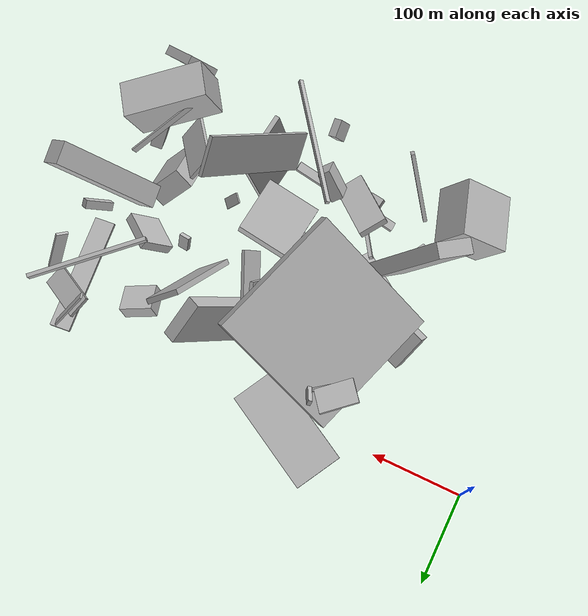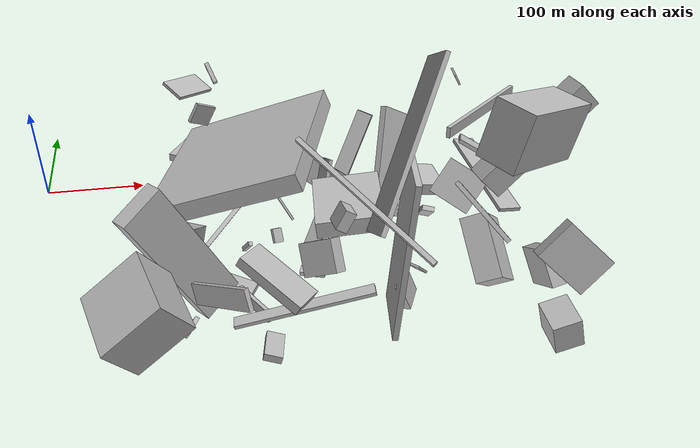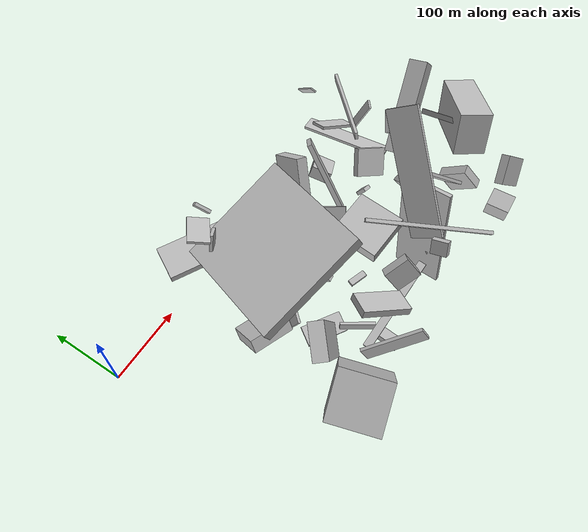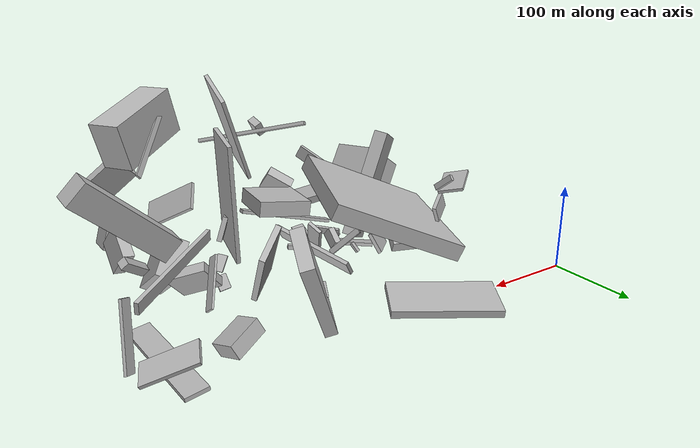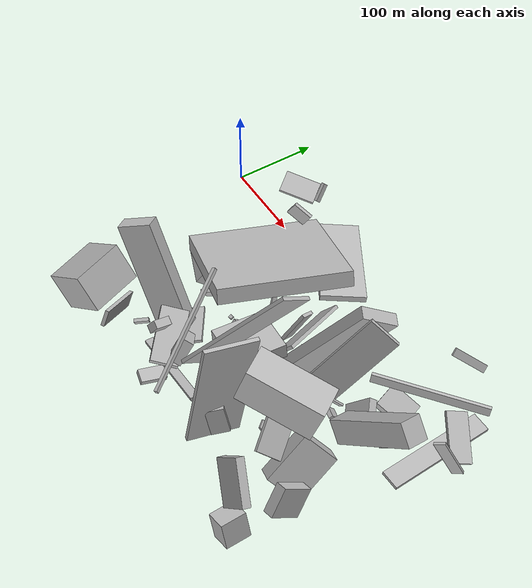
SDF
<sdf version="1.6">
 <world name="default">
  <model name="building_1">
   <static>0</static>
   <pose>427.8746247779972 -118.3131937884148 44.31102505832479 1.1717836898685954 -0.6625904021183507 -1.9890397304137952</pose>
   <link name="link">
    <gravity>0</gravity>
    <pose>0 0 21.0 0 0 0</pose>
    <collision name="collision"><geometry><box><size>10 38 42</size></box></geometry></collision>
    <visual name="visual">
     <cast_shadows>0</cast_shadows>
     <geometry><box><size>10 38 42</size></box></geometry>
     <material>
      <script>
       <uri>model://HANNAS_wall/materials/scripts</uri>
       <uri>model://HANNAS_wall/materials/textures</uri>
       <name>vrc/HANNAS_wall</name>
      </script>
     </material>
    </visual>
   </link>
  </model>
  <model name="building_3">
   <static>0</static>
   <pose>130.32142058411907 -123.86306985919583 28.53512889043172 -0.6266059021932514 0.028651438873548412 -0.38265802205027355</pose>
   <link name="link">
    <gravity>0</gravity>
    <pose>0 0 8.5 0 0 0</pose>
    <collision name="collision"><geometry><box><size>52 43 17</size></box></geometry></collision>
    <visual name="visual">
     <cast_shadows>0</cast_shadows>
     <geometry><box><size>52 43 17</size></box></geometry>
     <material>
      <script>
       <uri>model://HANNAS_wall/materials/scripts</uri>
       <uri>model://HANNAS_wall/materials/textures</uri>
       <name>vrc/HANNAS_wall</name>
      </script>
     </material>
    </visual>
   </link>
  </model>
  <model name="building_4">
   <static>0</static>
   <pose>333.0403821662819 -28.217472656530642 92.00969737232062 2.844556248384213 -0.5754585800654934 -1.8473623152837724</pose>
   <link name="link">
    <gravity>0</gravity>
    <pose>0 0 75.0 0 0 0</pose>
    <collision name="collision"><geometry><box><size>49 15 150</size></box></geometry></collision>
    <visual name="visual">
     <cast_shadows>0</cast_shadows>
     <geometry><box><size>49 15 150</size></box></geometry>
     <material>
      <script>
       <uri>model://HANNAS_wall/materials/scripts</uri>
       <uri>model://HANNAS_wall/materials/textures</uri>
       <name>vrc/HANNAS_wall</name>
      </script>
     </material>
    </visual>
   </link>
  </model>
  <model name="building_12">
   <static>0</static>
   <pose>157.24982616215678 -145.59640159223133 27.705705379388718 1.141422459198106 0.9817532152699329 2.0649143481300807</pose>
   <link name="link">
    <gravity>0</gravity>
    <pose>0 0 37.5 0 0 0</pose>
    <collision name="collision"><geometry><box><size>24 4 75</size></box></geometry></collision>
    <visual name="visual">
     <cast_shadows>0</cast_shadows>
     <geometry><box><size>24 4 75</size></box></geometry>
     <material>
      <script>
       <uri>model://HANNAS_wall/materials/scripts</uri>
       <uri>model://HANNAS_wall/materials/textures</uri>
       <name>vrc/HANNAS_wall</name>
      </script>
     </material>
    </visual>
   </link>
  </model>
  <model name="building_16">
   <static>0</static>
   <pose>404.9165418594119 -195.5237924178775 52.461560579459025 2.518352501273381 -0.6049603325659582 1.6710902150607259</pose>
   <link name="link">
    <gravity>0</gravity>
    <pose>0 0 23.0 0 0 0</pose>
    <collision name="collision"><geometry><box><size>60 24 46</size></box></geometry></collision>
    <visual name="visual">
     <cast_shadows>0</cast_shadows>
     <geometry><box><size>60 24 46</size></box></geometry>
     <material>
      <script>
       <uri>model://HANNAS_wall/materials/scripts</uri>
       <uri>model://HANNAS_wall/materials/textures</uri>
       <name>vrc/HANNAS_wall</name>
      </script>
     </material>
    </visual>
   </link>
  </model>
  <model name="building_19">
   <static>0</static>
   <pose>281.5078943689698 -105.79676110662123 68.86743471104913 2.0296644123883323 -0.33999283747577513 -2.98777704350968</pose>
   <link name="link">
    <gravity>0</gravity>
    <pose>0 0 8.5 0 0 0</pose>
    <collision name="collision"><geometry><box><size>4 42 17</size></box></geometry></collision>
    <visual name="visual">
     <cast_shadows>0</cast_shadows>
     <geometry><box><size>4 42 17</size></box></geometry>
     <material>
      <script>
       <uri>model://HANNAS_wall/materials/scripts</uri>
       <uri>model://HANNAS_wall/materials/textures</uri>
       <name>vrc/HANNAS_wall</name>
      </script>
     </material>
    </visual>
   </link>
  </model>
  <model name="building_21">
   <static>0</static>
   <pose>206.00596392958312 -88.20786246817127 83.86686261471118 -0.072227678789199 -0.42045399274548895 -0.29405858357691567</pose>
   <link name="link">
    <gravity>0</gravity>
    <pose>0 0 9.0 0 0 0</pose>
    <collision name="collision"><geometry><box><size>150 150 18</size></box></geometry></collision>
    <visual name="visual">
     <cast_shadows>0</cast_shadows>
     <geometry><box><size>150 150 18</size></box></geometry>
     <material>
      <script>
       <uri>model://HANNAS_wall/materials/scripts</uri>
       <uri>model://HANNAS_wall/materials/textures</uri>
       <name>vrc/HANNAS_wall</name>
      </script>
     </material>
    </visual>
   </link>
  </model>
  <model name="building_22">
   <static>0</static>
   <pose>457.55900169558515 -232.11853981129252 37.44520186995703 -0.692716554193236 -0.17643118602930716 0.1422758287269079</pose>
   <link name="link">
    <gravity>0</gravity>
    <pose>0 0 17.0 0 0 0</pose>
    <collision name="collision"><geometry><box><size>13 40 34</size></box></geometry></collision>
    <visual name="visual">
     <cast_shadows>0</cast_shadows>
     <geometry><box><size>13 40 34</size></box></geometry>
     <material>
      <script>
       <uri>model://HANNAS_wall/materials/scripts</uri>
       <uri>model://HANNAS_wall/materials/textures</uri>
       <name>vrc/HANNAS_wall</name>
      </script>
     </material>
    </visual>
   </link>
  </model>
  <model name="building_24">
   <static>0</static>
   <pose>180.85534049957624 -174.2226100584998 9.97281800642865 -0.22162244341089382 0.04831437497987815 2.5471112307758186</pose>
   <link name="link">
    <gravity>0</gravity>
    <pose>0 0 2.0 0 0 0</pose>
    <collision name="collision"><geometry><box><size>51 25 4</size></box></geometry></collision>
    <visual name="visual">
     <cast_shadows>0</cast_shadows>
     <geometry><box><size>51 25 4</size></box></geometry>
     <material>
      <script>
       <uri>model://HANNAS_wall/materials/scripts</uri>
       <uri>model://HANNAS_wall/materials/textures</uri>
       <name>vrc/HANNAS_wall</name>
      </script>
     </material>
    </visual>
   </link>
  </model>
  <model name="building_26">
   <static>0</static>
   <pose>282.6862878299945 -237.7688720652819 154.57431084941203 -0.5239118822449449 -1.093765262758287 -2.053086634645284</pose>
   <link name="link">
    <gravity>0</gravity>
    <pose>0 0 2.0 0 0 0</pose>
    <collision name="collision"><geometry><box><size>4 148 4</size></box></geometry></collision>
    <visual name="visual">
     <cast_shadows>0</cast_shadows>
     <geometry><box><size>4 148 4</size></box></geometry>
     <material>
      <script>
       <uri>model://HANNAS_wall/materials/scripts</uri>
       <uri>model://HANNAS_wall/materials/textures</uri>
       <name>vrc/HANNAS_wall</name>
      </script>
     </material>
    </visual>
   </link>
  </model>
  <model name="building_36">
   <static>0</static>
   <pose>331.78096026861755 -231.14146185622425 46.38496047689107 2.4980919687394896 -1.1951999043028168 -3.0077103294234524</pose>
   <link name="link">
    <gravity>0</gravity>
    <pose>0 0 3.0 0 0 0</pose>
    <collision name="collision"><geometry><box><size>30 21 6</size></box></geometry></collision>
    <visual name="visual">
     <cast_shadows>0</cast_shadows>
     <geometry><box><size>30 21 6</size></box></geometry>
     <material>
      <script>
       <uri>model://HANNAS_wall/materials/scripts</uri>
       <uri>model://HANNAS_wall/materials/textures</uri>
       <name>vrc/HANNAS_wall</name>
      </script>
     </material>
    </visual>
   </link>
  </model>
  <model name="building_38">
   <static>0</static>
   <pose>136.95603371561702 -187.96565766269796 74.18942441103826 -1.1073607272282395 -1.1274468159053326 -2.9382239267700743</pose>
   <link name="link">
    <gravity>0</gravity>
    <pose>0 0 8.5 0 0 0</pose>
    <collision name="collision"><geometry><box><size>136 41 17</size></box></geometry></collision>
    <visual name="visual">
     <cast_shadows>0</cast_shadows>
     <geometry><box><size>136 41 17</size></box></geometry>
     <material>
      <script>
       <uri>model://HANNAS_wall/materials/scripts</uri>
       <uri>model://HANNAS_wall/materials/textures</uri>
       <name>vrc/HANNAS_wall</name>
      </script>
     </material>
    </visual>
   </link>
  </model>
  <model name="building_39">
   <static>0</static>
   <pose>181.55552338361963 -3.8029846837589183 134.0268884696801 -0.7129458847645467 0.28172223112817185 -2.919422960539921</pose>
   <link name="link">
    <gravity>0</gravity>
    <pose>0 0 3.0 0 0 0</pose>
    <collision name="collision"><geometry><box><size>4 21 6</size></box></geometry></collision>
    <visual name="visual">
     <cast_shadows>0</cast_shadows>
     <geometry><box><size>4 21 6</size></box></geometry>
     <material>
      <script>
       <uri>model://HANNAS_wall/materials/scripts</uri>
       <uri>model://HANNAS_wall/materials/textures</uri>
       <name>vrc/HANNAS_wall</name>
      </script>
     </material>
    </visual>
   </link>
  </model>
  <model name="building_40">
   <static>0</static>
   <pose>398.82538052793393 -43.70706958780932 18.89376000352018 -2.8543160169609494 0.35547012998366434 0.3767872537508349</pose>
   <link name="link">
    <gravity>0</gravity>
    <pose>0 0 8.5 0 0 0</pose>
    <collision name="collision"><geometry><box><size>38 29 17</size></box></geometry></collision>
    <visual name="visual">
     <cast_shadows>0</cast_shadows>
     <geometry><box><size>38 29 17</size></box></geometry>
     <material>
      <script>
       <uri>model://HANNAS_wall/materials/scripts</uri>
       <uri>model://HANNAS_wall/materials/textures</uri>
       <name>vrc/HANNAS_wall</name>
      </script>
     </material>
    </visual>
   </link>
  </model>
  <model name="building_43">
   <static>0</static>
   <pose>456.5854649477096 -283.6110693227392 48.56442587525281 -3.1227469139394164 1.2705868520333456 0.050129803074393534</pose>
   <link name="link">
    <gravity>0</gravity>
    <pose>0 0 12.0 0 0 0</pose>
    <collision name="collision"><geometry><box><size>31 29 24</size></box></geometry></collision>
    <visual name="visual">
     <cast_shadows>0</cast_shadows>
     <geometry><box><size>31 29 24</size></box></geometry>
     <material>
      <script>
       <uri>model://HANNAS_wall/materials/scripts</uri>
       <uri>model://HANNAS_wall/materials/textures</uri>
       <name>vrc/HANNAS_wall</name>
      </script>
     </material>
    </visual>
   </link>
  </model>
  <model name="building_44">
   <static>0</static>
   <pose>416.575308794752 -222.19508551864763 82.32995958760702 0.9332422184919622 -0.7020246982641462 -2.056849052278858</pose>
   <link name="link">
    <gravity>0</gravity>
    <pose>0 0 32.5 0 0 0</pose>
    <collision name="collision"><geometry><box><size>32 4 65</size></box></geometry></collision>
    <visual name="visual">
     <cast_shadows>0</cast_shadows>
     <geometry><box><size>32 4 65</size></box></geometry>
     <material>
      <script>
       <uri>model://HANNAS_wall/materials/scripts</uri>
       <uri>model://HANNAS_wall/materials/textures</uri>
       <name>vrc/HANNAS_wall</name>
      </script>
     </material>
    </visual>
   </link>
  </model>
  <model name="building_45">
   <static>0</static>
   <pose>329.3016889136294 -190.97209809536005 82.43286395374668 1.4242539517256108 0.04899805646189071 -0.15519452106775286</pose>
   <link name="link">
    <gravity>0</gravity>
    <pose>0 0 30.5 0 0 0</pose>
    <collision name="collision"><geometry><box><size>5 150 61</size></box></geometry></collision>
    <visual name="visual">
     <cast_shadows>0</cast_shadows>
     <geometry><box><size>5 150 61</size></box></geometry>
     <material>
      <script>
       <uri>model://HANNAS_wall/materials/scripts</uri>
       <uri>model://HANNAS_wall/materials/textures</uri>
       <name>vrc/HANNAS_wall</name>
      </script>
     </material>
    </visual>
   </link>
  </model>
  <model name="building_52">
   <static>0</static>
   <pose>244.76180193425367 -220.6103196842091 81.41164423824289 0.7081499343680119 -0.8199032074183296 1.7153699720471818</pose>
   <link name="link">
    <gravity>0</gravity>
    <pose>0 0 16.0 0 0 0</pose>
    <collision name="collision"><geometry><box><size>28 13 32</size></box></geometry></collision>
    <visual name="visual">
     <cast_shadows>0</cast_shadows>
     <geometry><box><size>28 13 32</size></box></geometry>
     <material>
      <script>
       <uri>model://HANNAS_wall/materials/scripts</uri>
       <uri>model://HANNAS_wall/materials/textures</uri>
       <name>vrc/HANNAS_wall</name>
      </script>
     </material>
    </visual>
   </link>
  </model>
  <model name="building_54">
   <static>0</static>
   <pose>269.64176747127465 -257.2484152795081 154.2158566773842 1.03614849763451 -0.2653974276717952 -1.5009753607057454</pose>
   <link name="link">
    <gravity>0</gravity>
    <pose>0 0 4.5 0 0 0</pose>
    <collision name="collision"><geometry><box><size>18 16 9</size></box></geometry></collision>
    <visual name="visual">
     <cast_shadows>0</cast_shadows>
     <geometry><box><size>18 16 9</size></box></geometry>
     <material>
      <script>
       <uri>model://HANNAS_wall/materials/scripts</uri>
       <uri>model://HANNAS_wall/materials/textures</uri>
       <name>vrc/HANNAS_wall</name>
      </script>
     </material>
    </visual>
   </link>
  </model>
  <model name="building_55">
   <static>0</static>
   <pose>447.6871426932669 -45.520979965476585 90.10458429010048 -0.1017557220480183 0.09683040172243444 0.7320234597085364</pose>
   <link name="link">
    <gravity>0</gravity>
    <pose>0 0 5.5 0 0 0</pose>
    <collision name="collision"><geometry><box><size>127 4 11</size></box></geometry></collision>
    <visual name="visual">
     <cast_shadows>0</cast_shadows>
     <geometry><box><size>127 4 11</size></box></geometry>
     <material>
      <script>
       <uri>model://HANNAS_wall/materials/scripts</uri>
       <uri>model://HANNAS_wall/materials/textures</uri>
       <name>vrc/HANNAS_wall</name>
      </script>
     </material>
    </visual>
   </link>
  </model>
  <model name="building_58">
   <static>0</static>
   <pose>290.6489561010405 -165.73208653834703 81.9501164737256 -0.015225058822960326 0.13660226056872893 3.035088475721416</pose>
   <link name="link">
    <gravity>0</gravity>
    <pose>0 0 8.5 0 0 0</pose>
    <collision name="collision"><geometry><box><size>59 60 17</size></box></geometry></collision>
    <visual name="visual">
     <cast_shadows>0</cast_shadows>
     <geometry><box><size>59 60 17</size></box></geometry>
     <material>
      <script>
       <uri>model://HANNAS_wall/materials/scripts</uri>
       <uri>model://HANNAS_wall/materials/textures</uri>
       <name>vrc/HANNAS_wall</name>
      </script>
     </material>
    </visual>
   </link>
  </model>
  <model name="building_63">
   <static>0</static>
   <pose>119.8872813192337 -251.89495053377635 58.28256521902739 -0.6062462529504751 -0.06610089143228942 1.8712541905212332</pose>
   <link name="link">
    <gravity>0</gravity>
    <pose>0 0 22.0 0 0 0</pose>
    <collision name="collision"><geometry><box><size>61 59 44</size></box></geometry></collision>
    <visual name="visual">
     <cast_shadows>0</cast_shadows>
     <geometry><box><size>61 59 44</size></box></geometry>
     <material>
      <script>
       <uri>model://HANNAS_wall/materials/scripts</uri>
       <uri>model://HANNAS_wall/materials/textures</uri>
       <name>vrc/HANNAS_wall</name>
      </script>
     </material>
    </visual>
   </link>
  </model>
  <model name="building_66">
   <static>0</static>
   <pose>180.44657791633648 -7.34028641345794 21.63508340577586 2.8770562049796635 -1.4493858847372312 1.3217807977536165</pose>
   <link name="link">
    <gravity>0</gravity>
    <pose>0 0 27.0 0 0 0</pose>
    <collision name="collision"><geometry><box><size>8 115 54</size></box></geometry></collision>
    <visual name="visual">
     <cast_shadows>0</cast_shadows>
     <geometry><box><size>8 115 54</size></box></geometry>
     <material>
      <script>
       <uri>model://HANNAS_wall/materials/scripts</uri>
       <uri>model://HANNAS_wall/materials/textures</uri>
       <name>vrc/HANNAS_wall</name>
      </script>
     </material>
    </visual>
   </link>
  </model>
  <model name="building_67">
   <static>0</static>
   <pose>424.1686620560944 -136.46394040850993 77.0553981328942 -0.23072470720351182 0.8008727697406821 -0.07689169797525071</pose>
   <link name="link">
    <gravity>0</gravity>
    <pose>0 0 60.0 0 0 0</pose>
    <collision name="collision"><geometry><box><size>27 24 120</size></box></geometry></collision>
    <visual name="visual">
     <cast_shadows>0</cast_shadows>
     <geometry><box><size>27 24 120</size></box></geometry>
     <material>
      <script>
       <uri>model://HANNAS_wall/materials/scripts</uri>
       <uri>model://HANNAS_wall/materials/textures</uri>
       <name>vrc/HANNAS_wall</name>
      </script>
     </material>
    </visual>
   </link>
  </model>
  <model name="building_68">
   <static>0</static>
   <pose>171.6644358058552 -262.25690782288945 90.70982849386438 1.8616860073410928 -1.0078741858067883 1.9195836854070982</pose>
   <link name="link">
    <gravity>0</gravity>
    <pose>0 0 2.0 0 0 0</pose>
    <collision name="collision"><geometry><box><size>18 72 4</size></box></geometry></collision>
    <visual name="visual">
     <cast_shadows>0</cast_shadows>
     <geometry><box><size>18 72 4</size></box></geometry>
     <material>
      <script>
       <uri>model://HANNAS_wall/materials/scripts</uri>
       <uri>model://HANNAS_wall/materials/textures</uri>
       <name>vrc/HANNAS_wall</name>
      </script>
     </material>
    </visual>
   </link>
  </model>
  <model name="building_70">
   <static>0</static>
   <pose>351.3342652242468 -75.72975275823136 63.344938357842906 2.035740511826828 -0.6210119414049821 -2.5696541954493375</pose>
   <link name="link">
    <gravity>0</gravity>
    <pose>0 0 3.0 0 0 0</pose>
    <collision name="collision"><geometry><box><size>40 104 6</size></box></geometry></collision>
    <visual name="visual">
     <cast_shadows>0</cast_shadows>
     <geometry><box><size>40 104 6</size></box></geometry>
     <material>
      <script>
       <uri>model://HANNAS_wall/materials/scripts</uri>
       <uri>model://HANNAS_wall/materials/textures</uri>
       <name>vrc/HANNAS_wall</name>
      </script>
     </material>
    </visual>
   </link>
  </model>
  <model name="building_72">
   <static>0</static>
   <pose>267.2120691040358 -47.37223323673304 47.465332452169434 1.213328532254135 -0.8307666832420507 0.6834536739416601</pose>
   <link name="link">
    <gravity>0</gravity>
    <pose>0 0 46.5 0 0 0</pose>
    <collision name="collision"><geometry><box><size>25 4 93</size></box></geometry></collision>
    <visual name="visual">
     <cast_shadows>0</cast_shadows>
     <geometry><box><size>25 4 93</size></box></geometry>
     <material>
      <script>
       <uri>model://HANNAS_wall/materials/scripts</uri>
       <uri>model://HANNAS_wall/materials/textures</uri>
       <name>vrc/HANNAS_wall</name>
      </script>
     </material>
    </visual>
   </link>
  </model>
  <model name="building_75">
   <static>0</static>
   <pose>147.28827151116235 -221.84648648338333 13.148112482668973 -0.22644038661556526 1.0877639115649231 2.4202760302002173</pose>
   <link name="link">
    <gravity>0</gravity>
    <pose>0 0 2.0 0 0 0</pose>
    <collision name="collision"><geometry><box><size>11 17 4</size></box></geometry></collision>
    <visual name="visual">
     <cast_shadows>0</cast_shadows>
     <geometry><box><size>11 17 4</size></box></geometry>
     <material>
      <script>
       <uri>model://HANNAS_wall/materials/scripts</uri>
       <uri>model://HANNAS_wall/materials/textures</uri>
       <name>vrc/HANNAS_wall</name>
      </script>
     </material>
    </visual>
   </link>
  </model>
  <model name="building_78">
   <static>0</static>
   <pose>177.88844013580126 -20.035763835449252 96.18662310276113 -0.090786869456711 1.0329089203760624 -2.7028117004400865</pose>
   <link name="link">
    <gravity>0</gravity>
    <pose>0 0 11.5 0 0 0</pose>
    <collision name="collision"><geometry><box><size>20 4 23</size></box></geometry></collision>
    <visual name="visual">
     <cast_shadows>0</cast_shadows>
     <geometry><box><size>20 4 23</size></box></geometry>
     <material>
      <script>
       <uri>model://HANNAS_wall/materials/scripts</uri>
       <uri>model://HANNAS_wall/materials/textures</uri>
       <name>vrc/HANNAS_wall</name>
      </script>
     </material>
    </visual>
   </link>
  </model>
  <model name="building_79">
   <static>0</static>
   <pose>278.0838603929349 -80.65348520704856 12.809605768492062 2.1935205942060043 -0.2950542625910202 0.13782012991170597</pose>
   <link name="link">
    <gravity>0</gravity>
    <pose>0 0 6.0 0 0 0</pose>
    <collision name="collision"><geometry><box><size>8 18 12</size></box></geometry></collision>
    <visual name="visual">
     <cast_shadows>0</cast_shadows>
     <geometry><box><size>8 18 12</size></box></geometry>
     <material>
      <script>
       <uri>model://HANNAS_wall/materials/scripts</uri>
       <uri>model://HANNAS_wall/materials/textures</uri>
       <name>vrc/HANNAS_wall</name>
      </script>
     </material>
    </visual>
   </link>
  </model>
  <model name="building_81">
   <static>0</static>
   <pose>383.79383017761944 -118.6342769879363 31.443093328628425 -1.1770415096234477 0.9598932824344154 1.7480056897851584</pose>
   <link name="link">
    <gravity>0</gravity>
    <pose>0 0 6.0 0 0 0</pose>
    <collision name="collision"><geometry><box><size>16 5 12</size></box></geometry></collision>
    <visual name="visual">
     <cast_shadows>0</cast_shadows>
     <geometry><box><size>16 5 12</size></box></geometry>
     <material>
      <script>
       <uri>model://HANNAS_wall/materials/scripts</uri>
       <uri>model://HANNAS_wall/materials/textures</uri>
       <name>vrc/HANNAS_wall</name>
      </script>
     </material>
    </visual>
   </link>
  </model>
  <model name="building_82">
   <static>0</static>
   <pose>417.75384027922075 -210.1789669923811 161.57751847629044 0.28994310032444487 -0.005310993795412552 2.1626441363596713</pose>
   <link name="link">
    <gravity>0</gravity>
    <pose>0 0 24.5 0 0 0</pose>
    <collision name="collision"><geometry><box><size>35 84 49</size></box></geometry></collision>
    <visual name="visual">
     <cast_shadows>0</cast_shadows>
     <geometry><box><size>35 84 49</size></box></geometry>
     <material>
      <script>
       <uri>model://HANNAS_wall/materials/scripts</uri>
       <uri>model://HANNAS_wall/materials/textures</uri>
       <name>vrc/HANNAS_wall</name>
      </script>
     </material>
    </visual>
   </link>
  </model>
  <model name="building_84">
   <static>0</static>
   <pose>446.42304525375533 -3.9765408555320607 33.71742244666133 1.9761060424387653 0.34945478271589375 1.2146093623943184</pose>
   <link name="link">
    <gravity>0</gravity>
    <pose>0 0 28.5 0 0 0</pose>
    <collision name="collision"><geometry><box><size>26 4 57</size></box></geometry></collision>
    <visual name="visual">
     <cast_shadows>0</cast_shadows>
     <geometry><box><size>26 4 57</size></box></geometry>
     <material>
      <script>
       <uri>model://HANNAS_wall/materials/scripts</uri>
       <uri>model://HANNAS_wall/materials/textures</uri>
       <name>vrc/HANNAS_wall</name>
      </script>
     </material>
    </visual>
   </link>
  </model>
  <model name="building_86">
   <static>0</static>
   <pose>465.53263967666396 -42.2737841959715 10.697334268199938 -0.017011916467934193 0.10529192211027208 0.07762125022206559</pose>
   <link name="link">
    <gravity>0</gravity>
    <pose>0 0 2.0 0 0 0</pose>
    <collision name="collision"><geometry><box><size>23 128 4</size></box></geometry></collision>
    <visual name="visual">
     <cast_shadows>0</cast_shadows>
     <geometry><box><size>23 128 4</size></box></geometry>
     <material>
      <script>
       <uri>model://HANNAS_wall/materials/scripts</uri>
       <uri>model://HANNAS_wall/materials/textures</uri>
       <name>vrc/HANNAS_wall</name>
      </script>
     </material>
    </visual>
   </link>
  </model>
  <model name="building_87">
   <static>0</static>
   <pose>240.77962961107502 -235.19573583631643 43.39477322722519 2.8602170661803537 -0.05189656693333036 1.5138208963613755</pose>
   <link name="link">
    <gravity>0</gravity>
    <pose>0 0 2.0 0 0 0</pose>
    <collision name="collision"><geometry><box><size>10 123 4</size></box></geometry></collision>
    <visual name="visual">
     <cast_shadows>0</cast_shadows>
     <geometry><box><size>10 123 4</size></box></geometry>
     <material>
      <script>
       <uri>model://HANNAS_wall/materials/scripts</uri>
       <uri>model://HANNAS_wall/materials/textures</uri>
       <name>vrc/HANNAS_wall</name>
      </script>
     </material>
    </visual>
   </link>
  </model>
  <model name="building_88">
   <static>0</static>
   <pose>297.1399733898245 -235.0588819391951 116.07102678457862 0.6607408567411872 -0.3824439257107826 2.949484245283847</pose>
   <link name="link">
    <gravity>0</gravity>
    <pose>0 0 75.0 0 0 0</pose>
    <collision name="collision"><geometry><box><size>4 40 150</size></box></geometry></collision>
    <visual name="visual">
     <cast_shadows>0</cast_shadows>
     <geometry><box><size>4 40 150</size></box></geometry>
     <material>
      <script>
       <uri>model://HANNAS_wall/materials/scripts</uri>
       <uri>model://HANNAS_wall/materials/textures</uri>
       <name>vrc/HANNAS_wall</name>
      </script>
     </material>
    </visual>
   </link>
  </model>
  <model name="building_90">
   <static>0</static>
   <pose>225.41299215503355 -142.83315461019907 39.77177639544633 1.4602671725037373 -0.8390543732624943 1.7443296297223303</pose>
   <link name="link">
    <gravity>0</gravity>
    <pose>0 0 4.0 0 0 0</pose>
    <collision name="collision"><geometry><box><size>13 20 8</size></box></geometry></collision>
    <visual name="visual">
     <cast_shadows>0</cast_shadows>
     <geometry><box><size>13 20 8</size></box></geometry>
     <material>
      <script>
       <uri>model://HANNAS_wall/materials/scripts</uri>
       <uri>model://HANNAS_wall/materials/textures</uri>
       <name>vrc/HANNAS_wall</name>
      </script>
     </material>
    </visual>
   </link>
  </model>
  <model name="building_93">
   <static>0</static>
   <pose>201.9624459148066 -138.04157914397427 22.945416528035587 1.0815106356481201 -0.3757537059854746 -2.8246948400052116</pose>
   <link name="link">
    <gravity>0</gravity>
    <pose>0 0 2.0 0 0 0</pose>
    <collision name="collision"><geometry><box><size>4 13 4</size></box></geometry></collision>
    <visual name="visual">
     <cast_shadows>0</cast_shadows>
     <geometry><box><size>4 13 4</size></box></geometry>
     <material>
      <script>
       <uri>model://HANNAS_wall/materials/scripts</uri>
       <uri>model://HANNAS_wall/materials/textures</uri>
       <name>vrc/HANNAS_wall</name>
      </script>
     </material>
    </visual>
   </link>
  </model>
  <model name="building_101">
   <static>0</static>
   <pose>247.41324731657713 -172.3753142340163 21.47997088231892 0.7427749110890458 1.3961525999196045 0.369364516919607</pose>
   <link name="link">
    <gravity>0</gravity>
    <pose>0 0 11.5 0 0 0</pose>
    <collision name="collision"><geometry><box><size>5 8 23</size></box></geometry></collision>
    <visual name="visual">
     <cast_shadows>0</cast_shadows>
     <geometry><box><size>5 8 23</size></box></geometry>
     <material>
      <script>
       <uri>model://HANNAS_wall/materials/scripts</uri>
       <uri>model://HANNAS_wall/materials/textures</uri>
       <name>vrc/HANNAS_wall</name>
      </script>
     </material>
    </visual>
   </link>
  </model>
  <model name="building_102">
   <static>0</static>
   <pose>489.9020065487743 -53.781282883498946 38.95919618005011 1.2076047016597307 -0.16332024303459933 2.37538301997711</pose>
   <link name="link">
    <gravity>0</gravity>
    <pose>0 0 6.5 0 0 0</pose>
    <collision name="collision"><geometry><box><size>3 66 13</size></box></geometry></collision>
    <visual name="visual">
     <cast_shadows>0</cast_shadows>
     <geometry><box><size>3 66 13</size></box></geometry>
     <material>
      <script>
       <uri>model://HANNAS_wall/materials/scripts</uri>
       <uri>model://HANNAS_wall/materials/textures</uri>
       <name>vrc/HANNAS_wall</name>
      </script>
     </material>
    </visual>
   </link>
  </model>
  <model name="building_114">
   <static>0</static>
   <pose>353.07142770117474 -184.6410573771568 22.445392645957007 0.8594168521379004 0.12067193747505005 2.297314134757615</pose>
   <link name="link">
    <gravity>0</gravity>
    <pose>0 0 1.0 0 0 0</pose>
    <collision name="collision"><geometry><box><size>12 20 2</size></box></geometry></collision>
    <visual name="visual">
     <cast_shadows>0</cast_shadows>
     <geometry><box><size>12 20 2</size></box></geometry>
     <material>
      <script>
       <uri>model://HANNAS_wall/materials/scripts</uri>
       <uri>model://HANNAS_wall/materials/textures</uri>
       <name>vrc/HANNAS_wall</name>
      </script>
     </material>
    </visual>
   </link>
  </model>
  <model name="building_124">
   <static>0</static>
   <pose>211.05890942822376 -236.43276179865478 71.02288581349143 -2.217811714970018 -1.1250103361214758 -0.0454331539790649</pose>
   <link name="link">
    <gravity>0</gravity>
    <pose>0 0 15.5 0 0 0</pose>
    <collision name="collision"><geometry><box><size>9 64 31</size></box></geometry></collision>
    <visual name="visual">
     <cast_shadows>0</cast_shadows>
     <geometry><box><size>9 64 31</size></box></geometry>
     <material>
      <script>
       <uri>model://HANNAS_wall/materials/scripts</uri>
       <uri>model://HANNAS_wall/materials/textures</uri>
       <name>vrc/HANNAS_wall</name>
      </script>
     </material>
    </visual>
   </link>
  </model>
  <model name="building_126">
   <static>0</static>
   <pose>201.028594916742 -208.54989124913786 17.557590241297554 -0.012719606308587015 -0.2169326898756495 -2.556827498617716</pose>
   <link name="link">
    <gravity>0</gravity>
    <pose>0 0 4.5 0 0 0</pose>
    <collision name="collision"><geometry><box><size>4 43 9</size></box></geometry></collision>
    <visual name="visual">
     <cast_shadows>0</cast_shadows>
     <geometry><box><size>4 43 9</size></box></geometry>
     <material>
      <script>
       <uri>model://HANNAS_wall/materials/scripts</uri>
       <uri>model://HANNAS_wall/materials/textures</uri>
       <name>vrc/HANNAS_wall</name>
      </script>
     </material>
    </visual>
   </link>
  </model>
  <model name="building_130">
   <static>0</static>
   <pose>215.1676169018897 -246.15657388213936 10.972698639936636 -2.9749065604438547 -0.22262455545574364 2.924071512858399</pose>
   <link name="link">
    <gravity>0</gravity>
    <pose>0 0 3.5 0 0 0</pose>
    <collision name="collision"><geometry><box><size>16 30 7</size></box></geometry></collision>
    <visual name="visual">
     <cast_shadows>0</cast_shadows>
     <geometry><box><size>16 30 7</size></box></geometry>
     <material>
      <script>
       <uri>model://HANNAS_wall/materials/scripts</uri>
       <uri>model://HANNAS_wall/materials/textures</uri>
       <name>vrc/HANNAS_wall</name>
      </script>
     </material>
    </visual>
   </link>
  </model>
  <model name="building_131">
   <static>0</static>
   <pose>235.75081245452736 -104.71687487748771 50.16130845845669 -1.0485604096055592 -0.6618634143171847 -1.594071703322631</pose>
   <link name="link">
    <gravity>0</gravity>
    <pose>0 0 1.0 0 0 0</pose>
    <collision name="collision"><geometry><box><size>7 45 2</size></box></geometry></collision>
    <visual name="visual">
     <cast_shadows>0</cast_shadows>
     <geometry><box><size>7 45 2</size></box></geometry>
     <material>
      <script>
       <uri>model://HANNAS_wall/materials/scripts</uri>
       <uri>model://HANNAS_wall/materials/textures</uri>
       <name>vrc/HANNAS_wall</name>
      </script>
     </material>
    </visual>
   </link>
  </model>
  <model name="building_135">
   <static>0</static>
   <pose>442.33992887176316 -281.782917745252 115.14701556114059 -2.059261310683084 -0.7529925382718576 0.28344530062542095</pose>
   <link name="link">
    <gravity>0</gravity>
    <pose>0 0 5.0 0 0 0</pose>
    <collision name="collision"><geometry><box><size>35 50 10</size></box></geometry></collision>
    <visual name="visual">
     <cast_shadows>0</cast_shadows>
     <geometry><box><size>35 50 10</size></box></geometry>
     <material>
      <script>
       <uri>model://HANNAS_wall/materials/scripts</uri>
       <uri>model://HANNAS_wall/materials/textures</uri>
       <name>vrc/HANNAS_wall</name>
      </script>
     </material>
    </visual>
   </link>
  </model>
  <model name="building_138">
   <static>0</static>
   <pose>471.6279514105311 -105.44929115978628 76.44342677588837 0.659343345653614 0.600938129162031 -2.575304129440933</pose>
   <link name="link">
    <gravity>0</gravity>
    <pose>0 0 4.5 0 0 0</pose>
    <collision name="collision"><geometry><box><size>31 9 9</size></box></geometry></collision>
    <visual name="visual">
     <cast_shadows>0</cast_shadows>
     <geometry><box><size>31 9 9</size></box></geometry>
     <material>
      <script>
       <uri>model://HANNAS_wall/materials/scripts</uri>
       <uri>model://HANNAS_wall/materials/textures</uri>
       <name>vrc/HANNAS_wall</name>
      </script>
     </material>
    </visual>
   </link>
  </model>
  <model name="building_145">
   <static>0</static>
   <pose>428.6066404425465 -3.3692959457592053 117.65809549801904 2.509006382679898 -0.6191275979840638 1.9365350172931202</pose>
   <link name="link">
    <gravity>0</gravity>
    <pose>0 0 23.5 0 0 0</pose>
    <collision name="collision"><geometry><box><size>9 2 47</size></box></geometry></collision>
    <visual name="visual">
     <cast_shadows>0</cast_shadows>
     <geometry><box><size>9 2 47</size></box></geometry>
     <material>
      <script>
       <uri>model://HANNAS_wall/materials/scripts</uri>
       <uri>model://HANNAS_wall/materials/textures</uri>
       <name>vrc/HANNAS_wall</name>
      </script>
     </material>
    </visual>
   </link>
  </model>
  <model name="building_150">
   <static>0</static>
   <pose>420.5818643658787 -177.06151515474392 172.3513853252964 2.046977713730333 -0.8525546833482979 0.2706776133236601</pose>
   <link name="link">
    <gravity>0</gravity>
    <pose>0 0 1.0 0 0 0</pose>
    <collision name="collision"><geometry><box><size>6 80 2</size></box></geometry></collision>
    <visual name="visual">
     <cast_shadows>0</cast_shadows>
     <geometry><box><size>6 80 2</size></box></geometry>
     <material>
      <script>
       <uri>model://HANNAS_wall/materials/scripts</uri>
       <uri>model://HANNAS_wall/materials/textures</uri>
       <name>vrc/HANNAS_wall</name>
      </script>
     </material>
    </visual>
   </link>
  </model>
  <model name="building_151">
   <static>0</static>
   <pose>157.14602459969575 -17.74350863860805 128.6468539849386 -0.23164725187836943 -0.20842968578050353 -2.442467183211683</pose>
   <link name="link">
    <gravity>0</gravity>
    <pose>0 0 1.5 0 0 0</pose>
    <collision name="collision"><geometry><box><size>40 26 3</size></box></geometry></collision>
    <visual name="visual">
     <cast_shadows>0</cast_shadows>
     <geometry><box><size>40 26 3</size></box></geometry>
     <material>
      <script>
       <uri>model://HANNAS_wall/materials/scripts</uri>
       <uri>model://HANNAS_wall/materials/textures</uri>
       <name>vrc/HANNAS_wall</name>
      </script>
     </material>
    </visual>
   </link>
  </model>
 </world>
</sdf>
